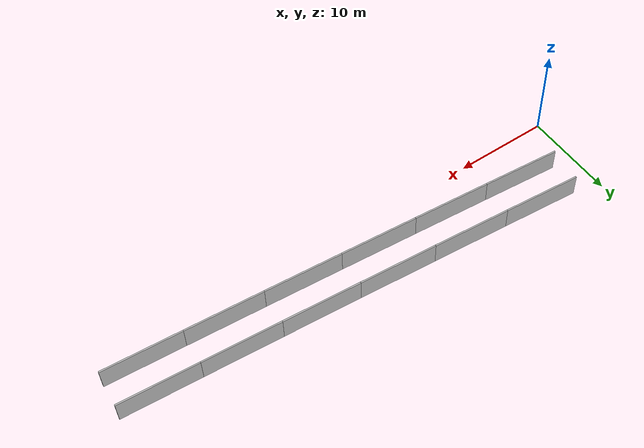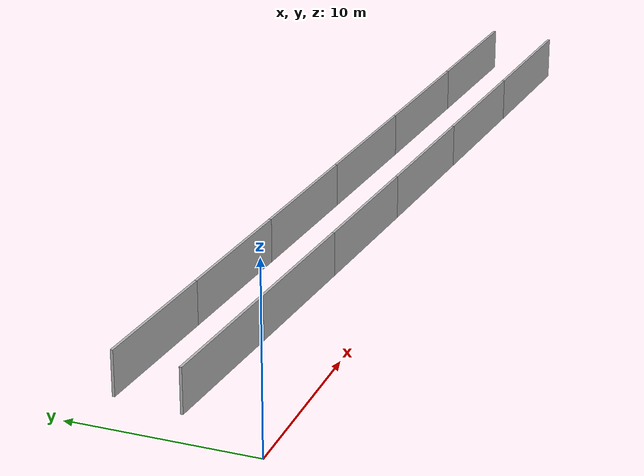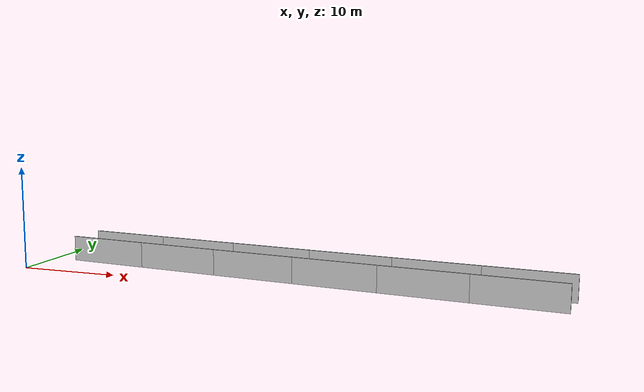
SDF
<?xml version="1.0" ?>
<sdf version="1.6">
  <model name="sps_3802">
    <pose frame="">0 0 0 0 -0 0</pose>
    <static>1</static>
    <self_collide>0</self_collide>
    <allow_auto_disable>0</allow_auto_disable>
    <link name="Wall4239">
      <kinematic>0</kinematic>
      <gravity>1</gravity>
      <self_collide>0</self_collide>
      <collision name="collision">
        <geometry>
          <box>
            <size>8.25179 0.15 2.5</size>
          </box>
        </geometry>
        <pose frame="">0 0 0 0 -0 0</pose>
      </collision>
      <visual name="visual">
        <geometry>
          <box>
            <size>8.25179 0.15 2.5</size>
          </box>
        </geometry>
        <pose frame="">0 0 0 0 -0 0</pose>
        <cast_shadows>1</cast_shadows>
        <transparency>0.0</transparency>
      </visual>
      <pose frame="">7.02444 8.4843 1.25 0 0 -0.0861511</pose>
    </link>
    <link name="Wall4240">
      <kinematic>0</kinematic>
      <gravity>1</gravity>
      <self_collide>0</self_collide>
      <collision name="collision">
        <geometry>
          <box>
            <size>8.25179 0.15 2.5</size>
          </box>
        </geometry>
        <pose frame="">0 0 0 0 -0 0</pose>
      </collision>
      <visual name="visual">
        <geometry>
          <box>
            <size>8.25179 0.15 2.5</size>
          </box>
        </geometry>
        <pose frame="">0 0 0 0 -0 0</pose>
        <cast_shadows>1</cast_shadows>
        <transparency>0.0</transparency>
      </visual>
      <pose frame="">15.2465 7.78398 1.25 0 0 -0.0837905</pose>
    </link>
    <link name="Wall4241">
      <kinematic>0</kinematic>
      <gravity>1</gravity>
      <self_collide>0</self_collide>
      <collision name="collision">
        <geometry>
          <box>
            <size>8.25193 0.15 2.5</size>
          </box>
        </geometry>
        <pose frame="">0 0 0 0 -0 0</pose>
      </collision>
      <visual name="visual">
        <geometry>
          <box>
            <size>8.25193 0.15 2.5</size>
          </box>
        </geometry>
        <pose frame="">0 0 0 0 -0 0</pose>
        <cast_shadows>1</cast_shadows>
        <transparency>0.0</transparency>
      </visual>
      <pose frame="">23.4702 7.10319 1.25 0 0 -0.0813992</pose>
    </link>
    <link name="Wall4242">
      <kinematic>0</kinematic>
      <gravity>1</gravity>
      <self_collide>0</self_collide>
      <collision name="collision">
        <geometry>
          <box>
            <size>8.25173 0.15 2.5</size>
          </box>
        </geometry>
        <pose frame="">0 0 0 0 -0 0</pose>
      </collision>
      <visual name="visual">
        <geometry>
          <box>
            <size>8.25173 0.15 2.5</size>
          </box>
        </geometry>
        <pose frame="">0 0 0 0 -0 0</pose>
        <cast_shadows>1</cast_shadows>
        <transparency>0.0</transparency>
      </visual>
      <pose frame="">31.6955 6.44182 1.25 0 0 -0.0790711</pose>
    </link>
    <link name="Wall4243">
      <kinematic>0</kinematic>
      <gravity>1</gravity>
      <self_collide>0</self_collide>
      <collision name="collision">
        <geometry>
          <box>
            <size>8.2521 0.15 2.5</size>
          </box>
        </geometry>
        <pose frame="">0 0 0 0 -0 0</pose>
      </collision>
      <visual name="visual">
        <geometry>
          <box>
            <size>8.2521 0.15 2.5</size>
          </box>
        </geometry>
        <pose frame="">0 0 0 0 -0 0</pose>
        <cast_shadows>1</cast_shadows>
        <transparency>0.0</transparency>
      </visual>
      <pose frame="">39.9224 5.79982 1.25 0 0 -0.0766862</pose>
    </link>
    <link name="Wall4244">
      <kinematic>0</kinematic>
      <gravity>1</gravity>
      <self_collide>0</self_collide>
      <collision name="collision">
        <geometry>
          <box>
            <size>8.25179 0.15 2.5</size>
          </box>
        </geometry>
        <pose frame="">0 0 0 0 -0 0</pose>
      </collision>
      <visual name="visual">
        <geometry>
          <box>
            <size>8.25179 0.15 2.5</size>
          </box>
        </geometry>
        <pose frame="">0 0 0 0 -0 0</pose>
        <cast_shadows>1</cast_shadows>
        <transparency>0.0</transparency>
      </visual>
      <pose frame="">48.1508 5.17729 1.25 0 0 -0.0743376</pose>
    </link>
    <link name="Wall8981">
      <kinematic>0</kinematic>
      <gravity>1</gravity>
      <self_collide>0</self_collide>
      <collision name="collision">
        <geometry>
          <box>
            <size>8.26187 0.15 2.5</size>
          </box>
        </geometry>
        <pose frame="">0 0 0 0 -0 0</pose>
      </collision>
      <visual name="visual">
        <geometry>
          <box>
            <size>8.26187 0.15 2.5</size>
          </box>
        </geometry>
        <pose frame="">0 0 0 0 -0 0</pose>
        <cast_shadows>1</cast_shadows>
        <transparency>0.0</transparency>
      </visual>
      <pose frame="">6.58266 4.75191 1.25 0 0 -0.0861867</pose>
    </link>
    <link name="Wall8982">
      <kinematic>0</kinematic>
      <gravity>1</gravity>
      <self_collide>0</self_collide>
      <collision name="collision">
        <geometry>
          <box>
            <size>8.26179 0.15 2.5</size>
          </box>
        </geometry>
        <pose frame="">0 0 0 0 -0 0</pose>
      </collision>
      <visual name="visual">
        <geometry>
          <box>
            <size>8.26179 0.15 2.5</size>
          </box>
        </geometry>
        <pose frame="">0 0 0 0 -0 0</pose>
        <cast_shadows>1</cast_shadows>
        <transparency>0.0</transparency>
      </visual>
      <pose frame="">14.8147 4.05049 1.25 0 0 -0.0838149</pose>
    </link>
    <link name="Wall8983">
      <kinematic>0</kinematic>
      <gravity>1</gravity>
      <self_collide>0</self_collide>
      <collision name="collision">
        <geometry>
          <box>
            <size>8.26201 0.15 2.5</size>
          </box>
        </geometry>
        <pose frame="">0 0 0 0 -0 0</pose>
      </collision>
      <visual name="visual">
        <geometry>
          <box>
            <size>8.26201 0.15 2.5</size>
          </box>
        </geometry>
        <pose frame="">0 0 0 0 -0 0</pose>
        <cast_shadows>1</cast_shadows>
        <transparency>0.0</transparency>
      </visual>
      <pose frame="">23.0484 3.36858 1.25 0 0 -0.081448</pose>
    </link>
    <link name="Wall8984">
      <kinematic>0</kinematic>
      <gravity>1</gravity>
      <self_collide>0</self_collide>
      <collision name="collision">
        <geometry>
          <box>
            <size>8.26179 0.15 2.5</size>
          </box>
        </geometry>
        <pose frame="">0 0 0 0 -0 0</pose>
      </collision>
      <visual name="visual">
        <geometry>
          <box>
            <size>8.26179 0.15 2.5</size>
          </box>
        </geometry>
        <pose frame="">0 0 0 0 -0 0</pose>
        <cast_shadows>1</cast_shadows>
        <transparency>0.0</transparency>
      </visual>
      <pose frame="">31.2837 2.7061 1.25 0 0 -0.0790933</pose>
    </link>
    <link name="Wall8985">
      <kinematic>0</kinematic>
      <gravity>1</gravity>
      <self_collide>0</self_collide>
      <collision name="collision">
        <geometry>
          <box>
            <size>8.26191 0.15 2.5</size>
          </box>
        </geometry>
        <pose frame="">0 0 0 0 -0 0</pose>
      </collision>
      <visual name="visual">
        <geometry>
          <box>
            <size>8.26191 0.15 2.5</size>
          </box>
        </geometry>
        <pose frame="">0 0 0 0 -0 0</pose>
        <cast_shadows>1</cast_shadows>
        <transparency>0.0</transparency>
      </visual>
      <pose frame="">39.5204 2.06309 1.25 0 0 -0.0767209</pose>
    </link>
    <link name="Wall8986">
      <kinematic>0</kinematic>
      <gravity>1</gravity>
      <self_collide>0</self_collide>
      <collision name="collision">
        <geometry>
          <box>
            <size>8.26166 0.15 2.5</size>
          </box>
        </geometry>
        <pose frame="">0 0 0 0 -0 0</pose>
      </collision>
      <visual name="visual">
        <geometry>
          <box>
            <size>8.26166 0.15 2.5</size>
          </box>
        </geometry>
        <pose frame="">0 0 0 0 -0 0</pose>
        <cast_shadows>1</cast_shadows>
        <transparency>0.0</transparency>
      </visual>
      <pose frame="">47.7587 1.43959 1.25 0 0 -0.0743598</pose>
    </link>
  </model>
</sdf>
